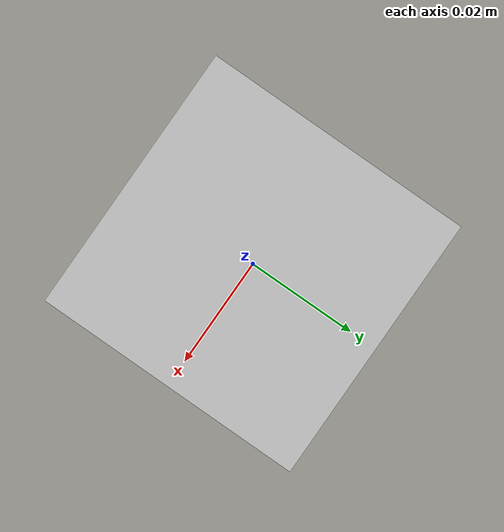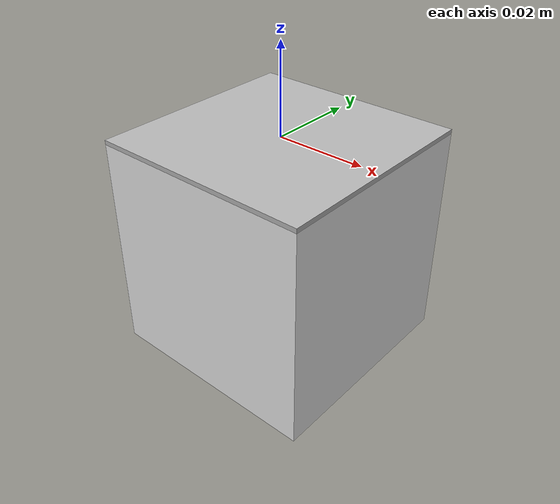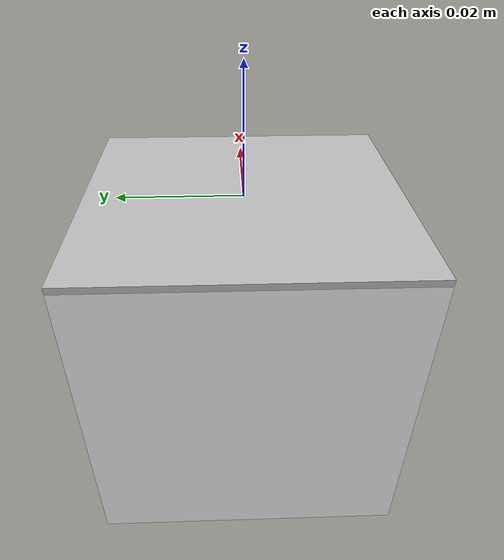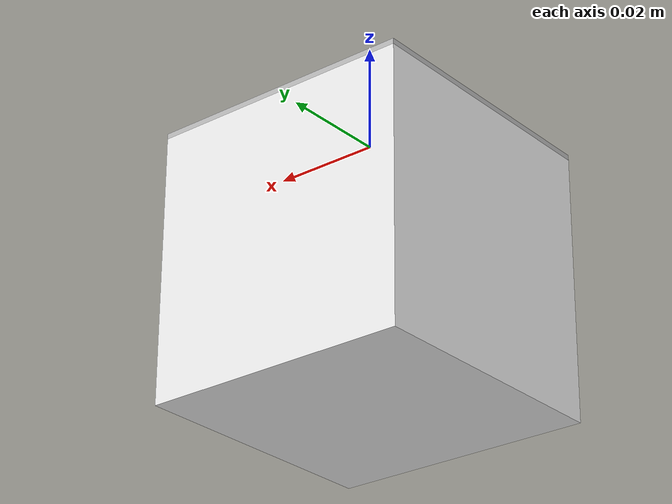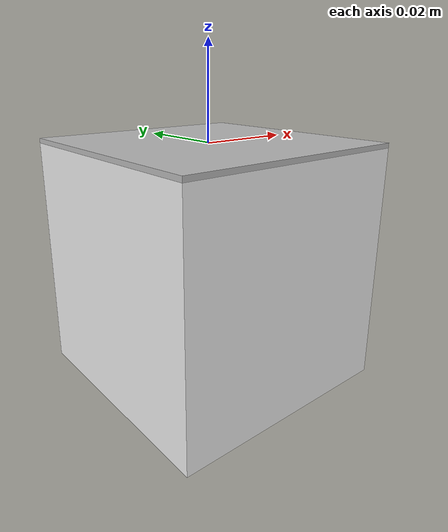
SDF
<?xml version='1.0'?>
<sdf version='1.5'>
  <model name='marker_0'>

    <link name='marker'>
      <pose frame=''>0 0 0 0 0 0</pose>
      <visual name='visual'>
        <geometry>
          <box>
            <size>0.05 0.05 0.001</size>
          </box>
        </geometry>
        <material>
          <script>
            <uri>model://marker_0/materials/scripts</uri>
            <uri>model://marker_0/materials/textures</uri>
            <name>Marker0/Marker</name>
          </script>
        </material>
        <pose frame=''>0 0 0 0 0 0</pose>
        <cast_shadows>0</cast_shadows>
        <transparency>0</transparency>
      </visual>
      <collision name='collision'>
        <laser_retro>0</laser_retro>
        <max_contacts>10</max_contacts>
        <pose frame=''>0 0 0 0 0 0</pose>
        <geometry>
          <box>
            <size>0.05 0.05 0.001</size>
          </box>
        </geometry>
      </collision>
    </link>

    <link name='marker_pad'>
      <pose frame='marker'>0 0 -0.0255 0 0 0</pose>
      <inertial>
        <mass>0.5</mass>
        <inertia>
          <ixx>0.00020833</ixx>
          <iyy>0.00020833</iyy>
          <izz>0.00020833</izz>
          <ixy>0</ixy>
          <ixz>0</ixz>
          <iyz>0</iyz>
        </inertia>
      </inertial>
      <visual name='visual'>
        <geometry>
          <box>
            <size>0.05 0.05 0.05</size>
          </box>
        </geometry>
        <material>
          <lighting>1</lighting>
          <script>
            <uri>file://media/materials/scripts/gazebo.material</uri>
            <name>Gazebo/White</name>
          </script>
          <ambient>0.1 0.1 0.1 1</ambient>
          <diffuse>0.7 0.7 0.7 1</diffuse>
          <specular>0.01 0.01 0.01 1</specular>
          <emissive>1 1 1 0</emissive>
        </material>
        <cast_shadows>1</cast_shadows>
        <transparency>0</transparency>
      </visual>
      <collision name='collision'>
        <laser_retro>0</laser_retro>
        <max_contacts>10</max_contacts>
        <pose frame='marker'>0 0 -0.0255 0 0 0</pose>
        <geometry>
          <box>
            <size>0.05 0.05 0.05</size>
          </box>
        </geometry>
      </collision>
    </link>

    <!-- Joint fixed for marker and marker_pad -->
    <joint name='marker_JOINT_marker_pad' type='fixed'>
      <parent>marker_pad</parent>
      <child>marker</child>
      <pose frame=''>0 0 0 0 0 0</pose>
    </joint>

    <static>0</static>

  </model>
</sdf>
